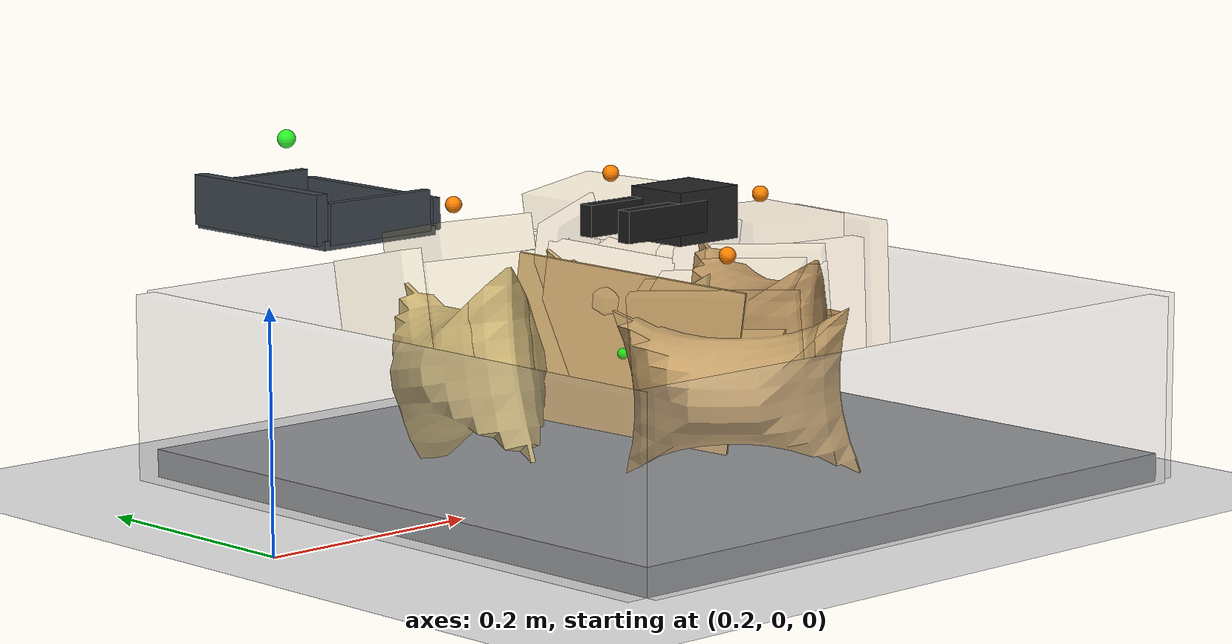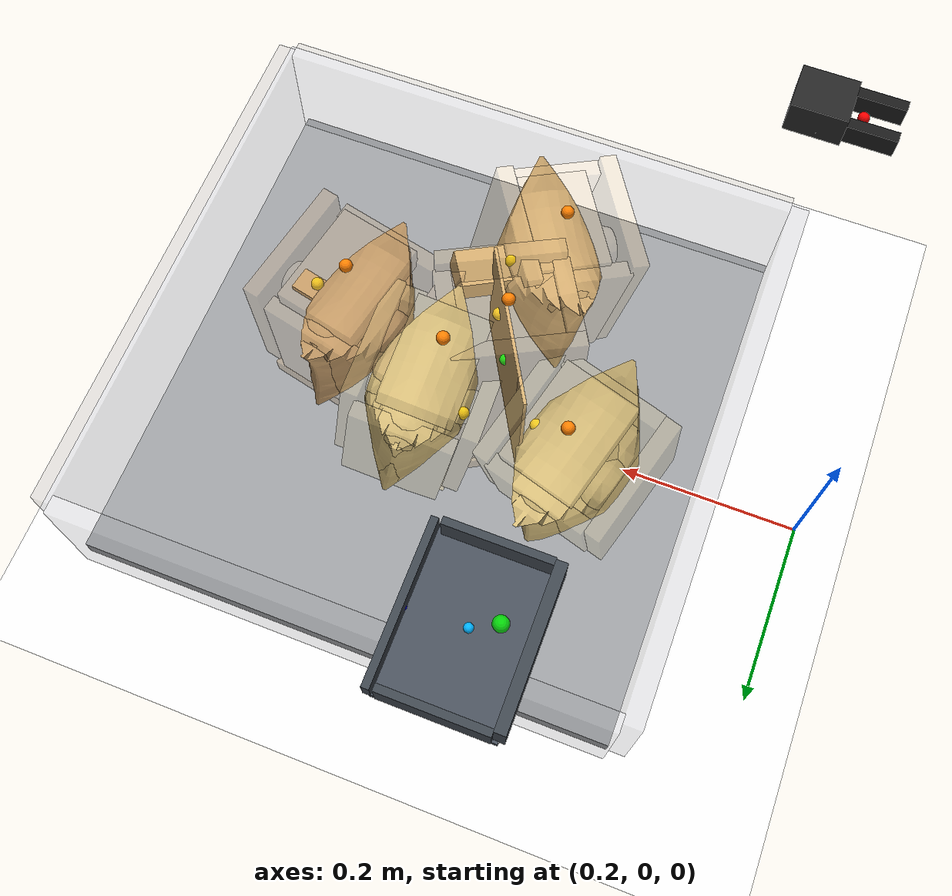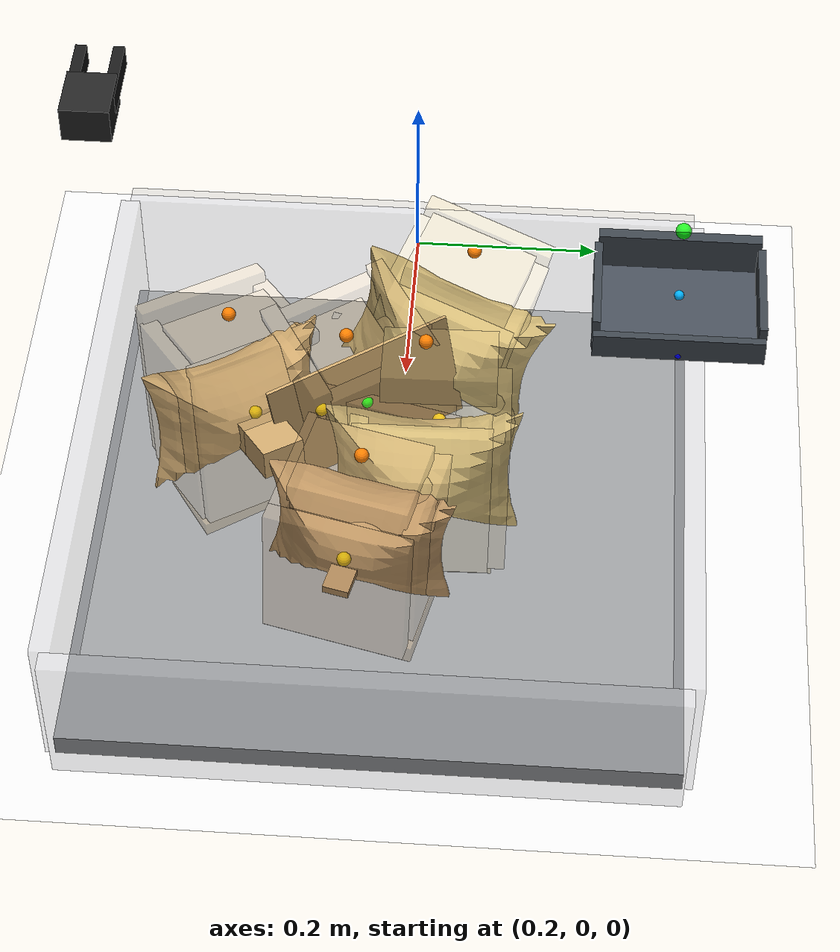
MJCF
<mujoco model="regular_well_filled_partially_buried_ep0_try0">
  <compiler angle="radian" coordinate="local" inertiafromgeom="true" meshdir="D:/Michael/2025/01.Research/01.Parceldetection/16.Pybullet/bullet3-master (1)/bullet3-master/examples/pybullet/examples/DeformableTest/Sackcodex2/object"/>
  <option timestep="0.002" gravity="0 0 -9.81" integrator="implicitfast" iterations="100" tolerance="1e-8"/>
  <size memory="768M" nconmax="12000"/>

  <visual>
    <global azimuth="128" elevation="-20"/>
    <headlight ambient="0.34 0.34 0.34" diffuse="0.78 0.78 0.78" specular="0.15 0.15 0.15"/>
    <rgba haze="0.11 0.13 0.18 1"/>
  </visual>

  <default>
    <geom condim="4" friction="1.15 0.03 0.01" margin="0.003" solimp="0.93 0.98 0.003" solref="0.012 1"/>
    <joint damping="1.2" armature="0.002"/>
    <position kp="2500" forcelimited="true" forcerange="-420 420"/>
    <motor ctrllimited="true"/>
  </default>

  <asset>
    <mesh name="sack_0_visual_mesh" file="sack8.obj" scale="0.0708 0.0708 0.0763"/>
    <mesh name="sack_1_visual_mesh" file="sack9.obj" scale="0.0680 0.0680 0.0705"/>
    <mesh name="sack_2_visual_mesh" file="sack2.obj" scale="0.0677 0.0677 0.0696"/>
    <mesh name="sack_3_visual_mesh" file="sack7.obj" scale="0.0747 0.0747 0.0829"/>
    <mesh name="sack_4_visual_mesh" file="sack10.obj" scale="0.0712 0.0712 0.0736"/>
  </asset>

  <worldbody>
    <light name="key" pos="0.85 0.15 1.8" dir="-0.2 -0.1 -1" directional="true"/>
    <geom name="floor" type="plane" size="2 2 0.1" rgba="0.93 0.93 0.93 1"/>
    <geom name="work_pad" type="box" pos="0.62 0 0.012" size="0.30 0.30 0.012" rgba="0.60 0.61 0.62 1" friction="1.4 0.05 0.01"/>
    <geom name="corral_front" type="box" pos="0.93 0.00 0.08" size="0.010 0.30 0.08" rgba="0.55 0.55 0.58 0.22" friction="1.0 0.03 0.01"/>
    <geom name="corral_back" type="box" pos="0.31 0.00 0.08" size="0.010 0.30 0.08" rgba="0.55 0.55 0.58 0.18" friction="1.0 0.03 0.01"/>
    <geom name="corral_left" type="box" pos="0.62 0.30 0.08" size="0.30 0.010 0.08" rgba="0.55 0.55 0.58 0.14" friction="1.0 0.03 0.01"/>
    <geom name="corral_right" type="box" pos="0.62 -0.30 0.08" size="0.30 0.010 0.08" rgba="0.55 0.55 0.58 0.14" friction="1.0 0.03 0.01"/>
    <camera name="overview" pos="1.22 0.00 0.92" xyaxes="0 1 0 -0.46 0 0.88"/>

    <body name="gripper_mocap" mocap="true" pos="0.36 -0.33 0.30" quat="0.707107 0 -0.707107 0"/>
    <body name="scoop_mocap" mocap="true" pos="0.42 0.28 0.20" quat="1 0 0 0"/>

    <body name="gripper_ctrl_base" pos="0.36 -0.33 0.30">
      <inertial pos="0 0 0" mass="0.001" diaginertia="1e-6 1e-6 1e-6"/>
      <joint name="gripper_ctrl_x" type="slide" axis="1 0 0" limited="true" range="0.20 1.00"/>
      <body name="gripper_ctrl_y_body">
        <inertial pos="0 0 0" mass="0.001" diaginertia="1e-6 1e-6 1e-6"/>
        <joint name="gripper_ctrl_y" type="slide" axis="0 1 0" limited="true" range="-0.60 0.60"/>
        <body name="gripper_ctrl_z_body">
          <inertial pos="0 0 0" mass="0.001" diaginertia="1e-6 1e-6 1e-6"/>
          <joint name="gripper_ctrl_z" type="slide" axis="0 0 1" limited="true" range="0.04 0.70"/>
          <body name="gripper_ctrl_yaw_body">
            <inertial pos="0 0 0" mass="0.001" diaginertia="1e-6 1e-6 1e-6"/>
            <joint name="gripper_ctrl_yaw" type="hinge" axis="0 0 1" limited="true" range="-3.1416 3.1416"/>
            <body name="gripper_ctrl_pitch_body">
              <inertial pos="0 0 0" mass="0.001" diaginertia="1e-6 1e-6 1e-6"/>
              <joint name="gripper_ctrl_pitch" type="hinge" axis="0 1 0" limited="true" range="-3.1416 3.1416"/>
              <body name="gripper_ctrl_roll_body">
                <inertial pos="0 0 0" mass="0.001" diaginertia="1e-6 1e-6 1e-6"/>
                <joint name="gripper_ctrl_roll" type="hinge" axis="1 0 0" limited="true" range="-3.1416 3.1416"/>
              </body>
            </body>
          </body>
        </body>
      </body>
    </body>

    <body name="scoop_ctrl_base" pos="0.42 0.28 0.20">
      <inertial pos="0 0 0" mass="0.001" diaginertia="1e-6 1e-6 1e-6"/>
      <joint name="scoop_ctrl_x" type="slide" axis="1 0 0" limited="true" range="0.20 1.00"/>
      <body name="scoop_ctrl_y_body">
        <inertial pos="0 0 0" mass="0.001" diaginertia="1e-6 1e-6 1e-6"/>
        <joint name="scoop_ctrl_y" type="slide" axis="0 1 0" limited="true" range="-0.60 0.60"/>
        <body name="scoop_ctrl_z_body">
          <inertial pos="0 0 0" mass="0.001" diaginertia="1e-6 1e-6 1e-6"/>
          <joint name="scoop_ctrl_z" type="slide" axis="0 0 1" limited="true" range="0.04 0.70"/>
          <body name="scoop_ctrl_yaw_body">
            <inertial pos="0 0 0" mass="0.001" diaginertia="1e-6 1e-6 1e-6"/>
            <joint name="scoop_ctrl_yaw" type="hinge" axis="0 0 1" limited="true" range="-3.1416 3.1416"/>
            <body name="scoop_ctrl_pitch_body">
              <inertial pos="0 0 0" mass="0.001" diaginertia="1e-6 1e-6 1e-6"/>
              <joint name="scoop_ctrl_pitch" type="hinge" axis="0 1 0" limited="true" range="-3.1416 3.1416"/>
              <body name="scoop_ctrl_roll_body">
                <inertial pos="0 0 0" mass="0.001" diaginertia="1e-6 1e-6 1e-6"/>
                <joint name="scoop_ctrl_roll" type="hinge" axis="1 0 0" limited="true" range="-3.1416 3.1416"/>
              </body>
            </body>
          </body>
        </body>
      </body>
    </body>

    <body name="gripper_tool" pos="0.36 -0.33 0.30" quat="0.707107 0 -0.707107 0">
      <freejoint name="gripper_tool_free"/>
      <inertial pos="0 0 0.04" mass="0.08" diaginertia="0.0002 0.0002 0.0002"/>
      <geom name="gripper_palm" type="box" pos="0 0 0.030" size="0.020 0.026 0.030" rgba="0.14 0.14 0.14 1"/>
      <body name="left_finger_body" pos="0 0 0.072">
        <joint name="left_finger_slide" type="slide" axis="0 1 0" limited="true" range="0.010 0.040" damping="12"/>
        <geom name="left_finger_geom" type="box" pos="0 0.020 0" size="0.012 0.006 0.040" rgba="0.10 0.10 0.10 1" friction="2.2 0.05 0.01"/>
      </body>
      <body name="right_finger_body" pos="0 0 0.072">
        <joint name="right_finger_slide" type="slide" axis="0 -1 0" limited="true" range="0.010 0.040" damping="12"/>
        <geom name="right_finger_geom" type="box" pos="0 -0.020 0" size="0.012 0.006 0.040" rgba="0.10 0.10 0.10 1" friction="2.2 0.05 0.01"/>
      </body>
      <site name="gripper_pinch_site" pos="0 0 0.074" size="0.006" rgba="1 0 0 1"/>
    </body>

    <body name="scoop_tool" pos="0.42 0.28 0.20" quat="1 0 0 0">
      <freejoint name="scoop_tool_free"/>
      <inertial pos="0 0 0.02" mass="0.10" diaginertia="0.0003 0.0003 0.0003"/>
      <geom name="scoop_plate" type="box" pos="0.062 0 0" size="0.062 0.085 0.004" rgba="0.28 0.31 0.35 1" friction="1.7 0.05 0.01"/>
      <geom name="scoop_lip" type="box" pos="0.126 0 0.014" size="0.004 0.085 0.014" rgba="0.24 0.27 0.30 1" friction="1.7 0.05 0.01"/>
      <geom name="scoop_left_rail" type="box" pos="0.062 0.082 0.018" size="0.056 0.004 0.018" rgba="0.24 0.27 0.30 1"/>
      <geom name="scoop_right_rail" type="box" pos="0.062 -0.082 0.018" size="0.056 0.004 0.018" rgba="0.24 0.27 0.30 1"/>
      <geom name="scoop_backstop" type="box" pos="0.000 0 0.022" size="0.006 0.082 0.022" rgba="0.24 0.27 0.30 1"/>
      <site name="scoop_tip_site" pos="0.126 0 0.005" size="0.005" rgba="0 0 1 1"/>
      <site name="scoop_center_site" pos="0.060 0 0.020" size="0.005" rgba="0 0.7 1 1"/>
      <site name="score_overlay_site" pos="0.030 0 0.080" size="0.008" rgba="0 1 0 0.8"/>
    </body>

    <body name="sack_0" pos="0.6282 0.0336 0.1111" euler="-0.0056 -0.1449 1.5925">
      <freejoint name="sack_0_free"/>

      <geom name="sack_0_visual" type="mesh" mesh="sack_0_visual_mesh" rgba="0.840 0.740 0.480 0.92" contype="0" conaffinity="0"/>
      <site name="sack_0_center_site" pos="0 0 0.000" size="0.006" rgba="0 1 0 1"/>
      <site name="sack_0_top_site" pos="0 0.0060 0.1525" size="0.007" rgba="1 0.5 0 1"/>
      <site name="sack_0_side_site" pos="0.0140 0.0497 0.018" size="0.007" rgba="1 0.8 0 1"/>

      <geom name="sack_0_core_geom" type="ellipsoid" pos="0 0 0.0060" size="0.0504 0.0422 0.0895" mass="1.0165" rgba="0.840 0.740 0.480 0.12" friction="1.0 0.03 0.01"/>
      <geom name="sack_0_core_front" type="capsule" fromto="-0.0060 0 -0.0200 0.0590 0 0.0600" size="0.0312" mass="0.2420" rgba="0.840 0.740 0.480 0.10"/>
      <geom name="sack_0_core_left" type="capsule" fromto="-0.008 0.0261 -0.010 0.018 0.0441 0.060" size="0.0241" mass="0.4357" rgba="0.840 0.740 0.480 0.10"/>
      <geom name="sack_0_core_right" type="capsule" fromto="-0.006 -0.0261 -0.008 0.020 -0.0461 0.054" size="0.0221" mass="0.4357" rgba="0.840 0.740 0.480 0.10"/>

      <body name="sack_0_bottom_support_proxy_body" pos="0 0.0045 -0.0881">
        <joint name="sack_0_bottom_x" type="slide" axis="1 0 0" limited="true" range="-0.012 0.012" damping="18" stiffness="497.2"/>
        <joint name="sack_0_bottom_y" type="slide" axis="0 1 0" limited="true" range="-0.012 0.012" damping="18" stiffness="497.2"/>
        <joint name="sack_0_bottom_z" type="slide" axis="0 0 1" limited="true" range="-0.008 0.020" damping="24" stiffness="612.1"/>
        <geom name="sack_0_bottom_support_proxy" type="box" size="0.0721 0.0557 0.0100" mass="0.1936" rgba="0.840 0.740 0.480 0.34" friction="1.55 0.05 0.01"/>
      </body>

      <body name="sack_0_top_grasp_proxy_body" pos="0.0140 0.0060 0.1225">
        <joint name="sack_0_top_x" type="slide" axis="1 0 0" limited="true" range="-0.018 0.018" damping="12" stiffness="191.1"/>
        <joint name="sack_0_top_y" type="slide" axis="0 1 0" limited="true" range="-0.018 0.018" damping="12" stiffness="191.1"/>
        <joint name="sack_0_top_z" type="slide" axis="0 0 1" limited="true" range="-0.040 0.010" damping="14" stiffness="142.4"/>
        <geom name="sack_0_top_grasp_proxy" type="box" size="0.0561 0.0397 0.0150" mass="0.1452" rgba="0.840 0.740 0.480 0.26" friction="2.2 0.05 0.01"/>
      </body>

      <body name="sack_0_left_side_proxy_body" pos="0 0.0658 0.010">
        <joint name="sack_0_left_side_slide" type="slide" axis="0 -1 0" limited="true" range="-0.028 0.016" damping="16" stiffness="254.7"/>
        <geom name="sack_0_left_side_proxy" type="box" size="0.0681 0.0090 0.0861" mass="0.1452" rgba="0.840 0.740 0.480 0.24"/>
      </body>

      <body name="sack_0_right_side_proxy_body" pos="0 -0.0618 0.010">
        <joint name="sack_0_right_side_slide" type="slide" axis="0 1 0" limited="true" range="-0.028 0.016" damping="16" stiffness="236.0"/>
        <geom name="sack_0_right_side_proxy" type="box" size="0.0681 0.0090 0.0861" mass="0.1452" rgba="0.840 0.740 0.480 0.24"/>
      </body>

      <body name="sack_0_front_proxy_body" pos="0.0761 0 0.000">
        <joint name="sack_0_front_slide" type="slide" axis="-1 0 0" limited="true" range="-0.022 0.012" damping="15" stiffness="238.6"/>
        <geom name="sack_0_front_support_proxy" type="box" size="0.0090 0.0557 0.0841" mass="0.1210" rgba="0.840 0.740 0.480 0.22"/>
      </body>

      <body name="sack_0_back_proxy_body" pos="-0.0621 0 0.000">
        <joint name="sack_0_back_slide" type="slide" axis="1 0 0" limited="true" range="-0.022 0.012" damping="15" stiffness="219.9"/>
        <geom name="sack_0_back_support_proxy" type="box" size="0.0090 0.0557 0.0841" mass="0.1210" rgba="0.840 0.740 0.480 0.22"/>
      </body>

      <body name="sack_0_shape_proxy_body" pos="0.0084 0.0181 0.0276">
        <joint name="sack_0_bulge_y" type="slide" axis="0 1 0" limited="true" range="-0.020 0.020" damping="8" stiffness="75.2"/>
        <joint name="sack_0_bulge_z" type="slide" axis="0 0 1" limited="true" range="-0.014 0.028" damping="8" stiffness="81.4"/>
        <geom name="sack_0_shape_proxy" type="ellipsoid" size="0.0201 0.0161 0.0260" mass="0.0968" rgba="0.840 0.740 0.480 0.28"/>
      </body>
    </body>

    <body name="sack_1" pos="0.7220 -0.0207 0.1217" euler="-0.0371 -0.0072 1.3527">
      <freejoint name="sack_1_free"/>

      <geom name="sack_1_visual" type="mesh" mesh="sack_1_visual_mesh" rgba="0.760 0.600 0.400 0.92" contype="0" conaffinity="0"/>
      <site name="sack_1_center_site" pos="0 0 0.000" size="0.006" rgba="0 1 0 1"/>
      <site name="sack_1_top_site" pos="0 -0.0060 0.1141" size="0.007" rgba="1 0.5 0 1"/>
      <site name="sack_1_side_site" pos="0.0000 -0.0556 0.018" size="0.007" rgba="1 0.8 0 1"/>

      <geom name="sack_1_core_geom" type="ellipsoid" pos="0 0 0.0058" size="0.0443 0.0344 0.0775" mass="1.0388" rgba="0.760 0.600 0.400 0.12" friction="1.0 0.03 0.01"/>
      <geom name="sack_1_core_front" type="capsule" fromto="-0.0200 0 -0.0200 0.0450 0 0.0600" size="0.0299" mass="0.2473" rgba="0.760 0.600 0.400 0.10"/>
      <geom name="sack_1_core_left" type="capsule" fromto="-0.008 0.0374 -0.010 0.018 0.0554 0.060" size="0.0242" mass="0.4452" rgba="0.760 0.600 0.400 0.10"/>
      <geom name="sack_1_core_right" type="capsule" fromto="-0.006 -0.0374 -0.008 0.020 -0.0574 0.054" size="0.0222" mass="0.4452" rgba="0.760 0.600 0.400 0.10"/>

      <body name="sack_1_bottom_support_proxy_body" pos="0 -0.0105 -0.0827">
        <joint name="sack_1_bottom_x" type="slide" axis="1 0 0" limited="true" range="-0.012 0.012" damping="18" stiffness="457.7"/>
        <joint name="sack_1_bottom_y" type="slide" axis="0 1 0" limited="true" range="-0.012 0.012" damping="18" stiffness="457.7"/>
        <joint name="sack_1_bottom_z" type="slide" axis="0 0 1" limited="true" range="-0.008 0.020" damping="24" stiffness="563.8"/>
        <geom name="sack_1_bottom_support_proxy" type="box" size="0.0749 0.0616 0.0100" mass="0.1979" rgba="0.760 0.600 0.400 0.34" friction="1.55 0.05 0.01"/>
      </body>

      <body name="sack_1_top_grasp_proxy_body" pos="0.0000 -0.0060 0.0841">
        <joint name="sack_1_top_x" type="slide" axis="1 0 0" limited="true" range="-0.018 0.018" damping="12" stiffness="175.8"/>
        <joint name="sack_1_top_y" type="slide" axis="0 1 0" limited="true" range="-0.018 0.018" damping="12" stiffness="175.8"/>
        <joint name="sack_1_top_z" type="slide" axis="0 0 1" limited="true" range="-0.040 0.010" damping="14" stiffness="129.2"/>
        <geom name="sack_1_top_grasp_proxy" type="box" size="0.0589 0.0456 0.0150" mass="0.1484" rgba="0.760 0.600 0.400 0.26" friction="2.2 0.05 0.01"/>
      </body>

      <body name="sack_1_left_side_proxy_body" pos="0 0.0830 0.010">
        <joint name="sack_1_left_side_slide" type="slide" axis="0 -1 0" limited="true" range="-0.028 0.016" damping="16" stiffness="227.8"/>
        <geom name="sack_1_left_side_proxy" type="box" size="0.0709 0.0090 0.0807" mass="0.1484" rgba="0.760 0.600 0.400 0.24"/>
      </body>

      <body name="sack_1_right_side_proxy_body" pos="0 -0.0790 0.010">
        <joint name="sack_1_right_side_slide" type="slide" axis="0 1 0" limited="true" range="-0.028 0.016" damping="16" stiffness="211.2"/>
        <geom name="sack_1_right_side_proxy" type="box" size="0.0709 0.0090 0.0807" mass="0.1484" rgba="0.760 0.600 0.400 0.24"/>
      </body>

      <body name="sack_1_front_proxy_body" pos="0.0649 0 0.000">
        <joint name="sack_1_front_slide" type="slide" axis="-1 0 0" limited="true" range="-0.022 0.012" damping="15" stiffness="218.8"/>
        <geom name="sack_1_front_support_proxy" type="box" size="0.0090 0.0616 0.0787" mass="0.1237" rgba="0.760 0.600 0.400 0.22"/>
      </body>

      <body name="sack_1_back_proxy_body" pos="-0.0649 0 0.000">
        <joint name="sack_1_back_slide" type="slide" axis="1 0 0" limited="true" range="-0.022 0.012" damping="15" stiffness="202.3"/>
        <geom name="sack_1_back_support_proxy" type="box" size="0.0090 0.0616 0.0787" mass="0.1237" rgba="0.760 0.600 0.400 0.22"/>
      </body>

      <body name="sack_1_shape_proxy_body" pos="0.0000 -0.0294 0.0408">
        <joint name="sack_1_bulge_y" type="slide" axis="0 1 0" limited="true" range="-0.020 0.020" damping="8" stiffness="101.6"/>
        <joint name="sack_1_bulge_z" type="slide" axis="0 0 1" limited="true" range="-0.014 0.028" damping="8" stiffness="101.2"/>
        <geom name="sack_1_shape_proxy" type="ellipsoid" size="0.0202 0.0163 0.0262" mass="0.0989" rgba="0.760 0.600 0.400 0.28"/>
      </body>
    </body>

    <body name="sack_2" pos="0.5563 -0.0278 0.1215" euler="0.1320 0.0246 -2.6404">
      <freejoint name="sack_2_free"/>

      <geom name="sack_2_visual" type="mesh" mesh="sack_2_visual_mesh" rgba="0.820 0.670 0.440 0.92" contype="0" conaffinity="0"/>
      <site name="sack_2_center_site" pos="0 0 0.000" size="0.006" rgba="0 1 0 1"/>
      <site name="sack_2_top_site" pos="0 0.0060 0.1037" size="0.007" rgba="1 0.5 0 1"/>
      <site name="sack_2_side_site" pos="0.0000 0.0477 0.018" size="0.007" rgba="1 0.8 0 1"/>

      <geom name="sack_2_core_geom" type="ellipsoid" pos="0 0 0.0057" size="0.0451 0.0350 0.0669" mass="0.6594" rgba="0.820 0.670 0.440 0.12" friction="1.0 0.03 0.01"/>
      <geom name="sack_2_core_front" type="capsule" fromto="-0.0200 0 -0.0200 0.0450 0 0.0600" size="0.0296" mass="0.1570" rgba="0.820 0.670 0.440 0.10"/>
      <geom name="sack_2_core_left" type="capsule" fromto="-0.008 0.0226 -0.010 0.018 0.0406 0.060" size="0.0240" mass="0.2826" rgba="0.820 0.670 0.440 0.10"/>
      <geom name="sack_2_core_right" type="capsule" fromto="-0.006 -0.0226 -0.008 0.020 -0.0426 0.054" size="0.0220" mass="0.2826" rgba="0.820 0.670 0.440 0.10"/>

      <body name="sack_2_bottom_support_proxy_body" pos="0 -0.0146 -0.1050">
        <joint name="sack_2_bottom_x" type="slide" axis="1 0 0" limited="true" range="-0.012 0.012" damping="18" stiffness="447.3"/>
        <joint name="sack_2_bottom_y" type="slide" axis="0 1 0" limited="true" range="-0.012 0.012" damping="18" stiffness="447.3"/>
        <joint name="sack_2_bottom_z" type="slide" axis="0 0 1" limited="true" range="-0.008 0.020" damping="24" stiffness="551.2"/>
        <geom name="sack_2_bottom_support_proxy" type="box" size="0.0726 0.0537 0.0100" mass="0.1256" rgba="0.820 0.670 0.440 0.34" friction="1.55 0.05 0.01"/>
      </body>

      <body name="sack_2_top_grasp_proxy_body" pos="0.0000 0.0060 0.0737">
        <joint name="sack_2_top_x" type="slide" axis="1 0 0" limited="true" range="-0.018 0.018" damping="12" stiffness="171.7"/>
        <joint name="sack_2_top_y" type="slide" axis="0 1 0" limited="true" range="-0.018 0.018" damping="12" stiffness="171.7"/>
        <joint name="sack_2_top_z" type="slide" axis="0 0 1" limited="true" range="-0.040 0.010" damping="14" stiffness="125.8"/>
        <geom name="sack_2_top_grasp_proxy" type="box" size="0.0566 0.0377 0.0150" mass="0.0942" rgba="0.820 0.670 0.440 0.26" friction="2.2 0.05 0.01"/>
      </body>

      <body name="sack_2_left_side_proxy_body" pos="0 0.0603 0.010">
        <joint name="sack_2_left_side_slide" type="slide" axis="0 -1 0" limited="true" range="-0.028 0.016" damping="16" stiffness="220.5"/>
        <geom name="sack_2_left_side_proxy" type="box" size="0.0686 0.0090 0.1030" mass="0.0942" rgba="0.820 0.670 0.440 0.24"/>
      </body>

      <body name="sack_2_right_side_proxy_body" pos="0 -0.0563 0.010">
        <joint name="sack_2_right_side_slide" type="slide" axis="0 1 0" limited="true" range="-0.028 0.016" damping="16" stiffness="204.5"/>
        <geom name="sack_2_right_side_proxy" type="box" size="0.0686 0.0090 0.1030" mass="0.0942" rgba="0.820 0.670 0.440 0.24"/>
      </body>

      <body name="sack_2_front_proxy_body" pos="0.0626 0 0.000">
        <joint name="sack_2_front_slide" type="slide" axis="-1 0 0" limited="true" range="-0.022 0.012" damping="15" stiffness="213.7"/>
        <geom name="sack_2_front_support_proxy" type="box" size="0.0090 0.0537 0.1010" mass="0.0785" rgba="0.820 0.670 0.440 0.22"/>
      </body>

      <body name="sack_2_back_proxy_body" pos="-0.0626 0 0.000">
        <joint name="sack_2_back_slide" type="slide" axis="1 0 0" limited="true" range="-0.022 0.012" damping="15" stiffness="197.7"/>
        <geom name="sack_2_back_support_proxy" type="box" size="0.0090 0.0537 0.1010" mass="0.0785" rgba="0.820 0.670 0.440 0.22"/>
      </body>

      <body name="sack_2_shape_proxy_body" pos="0.0000 0.0146 0.0442">
        <joint name="sack_2_bulge_y" type="slide" axis="0 1 0" limited="true" range="-0.020 0.020" damping="8" stiffness="108.4"/>
        <joint name="sack_2_bulge_z" type="slide" axis="0 0 1" limited="true" range="-0.014 0.028" damping="8" stiffness="106.3"/>
        <geom name="sack_2_shape_proxy" type="ellipsoid" size="0.0200 0.0161 0.0263" mass="0.0628" rgba="0.820 0.670 0.440 0.28"/>
      </body>
    </body>

    <body name="sack_3" pos="0.4473 0.0459 0.1106" euler="-0.2149 0.0345 1.2920">
      <freejoint name="sack_3_free"/>

      <geom name="sack_3_visual" type="mesh" mesh="sack_3_visual_mesh" rgba="0.840 0.740 0.480 0.92" contype="0" conaffinity="0"/>
      <site name="sack_3_center_site" pos="0 0 0.000" size="0.006" rgba="0 1 0 1"/>
      <site name="sack_3_top_site" pos="0 -0.0060 0.1379" size="0.007" rgba="1 0.5 0 1"/>
      <site name="sack_3_side_site" pos="0.0000 -0.0523 0.018" size="0.007" rgba="1 0.8 0 1"/>

      <geom name="sack_3_core_geom" type="ellipsoid" pos="0 0 0.0059" size="0.0513 0.0436 0.0919" mass="0.9781" rgba="0.840 0.740 0.480 0.12" friction="1.0 0.03 0.01"/>
      <geom name="sack_3_core_front" type="capsule" fromto="-0.0200 0 -0.0200 0.0450 0 0.0600" size="0.0323" mass="0.2329" rgba="0.840 0.740 0.480 0.10"/>
      <geom name="sack_3_core_left" type="capsule" fromto="-0.008 0.0264 -0.010 0.018 0.0444 0.060" size="0.0241" mass="0.4192" rgba="0.840 0.740 0.480 0.10"/>
      <geom name="sack_3_core_right" type="capsule" fromto="-0.006 -0.0264 -0.008 0.020 -0.0464 0.054" size="0.0221" mass="0.4192" rgba="0.840 0.740 0.480 0.10"/>

      <body name="sack_3_bottom_support_proxy_body" pos="0 0.0148 -0.0960">
        <joint name="sack_3_bottom_x" type="slide" axis="1 0 0" limited="true" range="-0.012 0.012" damping="18" stiffness="529.2"/>
        <joint name="sack_3_bottom_y" type="slide" axis="0 1 0" limited="true" range="-0.012 0.012" damping="18" stiffness="529.2"/>
        <joint name="sack_3_bottom_z" type="slide" axis="0 0 1" limited="true" range="-0.008 0.020" damping="24" stiffness="651.3"/>
        <geom name="sack_3_bottom_support_proxy" type="box" size="0.0731 0.0583 0.0100" mass="0.1863" rgba="0.840 0.740 0.480 0.34" friction="1.55 0.05 0.01"/>
      </body>

      <body name="sack_3_top_grasp_proxy_body" pos="0.0000 -0.0060 0.1079">
        <joint name="sack_3_top_x" type="slide" axis="1 0 0" limited="true" range="-0.018 0.018" damping="12" stiffness="203.6"/>
        <joint name="sack_3_top_y" type="slide" axis="0 1 0" limited="true" range="-0.018 0.018" damping="12" stiffness="203.6"/>
        <joint name="sack_3_top_z" type="slide" axis="0 0 1" limited="true" range="-0.040 0.010" damping="14" stiffness="153.1"/>
        <geom name="sack_3_top_grasp_proxy" type="box" size="0.0571 0.0423 0.0150" mass="0.1397" rgba="0.840 0.740 0.480 0.26" friction="2.2 0.05 0.01"/>
      </body>

      <body name="sack_3_left_side_proxy_body" pos="0 0.0687 0.010">
        <joint name="sack_3_left_side_slide" type="slide" axis="0 -1 0" limited="true" range="-0.028 0.016" damping="16" stiffness="275.9"/>
        <geom name="sack_3_left_side_proxy" type="box" size="0.0691 0.0090 0.0940" mass="0.1397" rgba="0.840 0.740 0.480 0.24"/>
      </body>

      <body name="sack_3_right_side_proxy_body" pos="0 -0.0647 0.010">
        <joint name="sack_3_right_side_slide" type="slide" axis="0 1 0" limited="true" range="-0.028 0.016" damping="16" stiffness="255.4"/>
        <geom name="sack_3_right_side_proxy" type="box" size="0.0691 0.0090 0.0940" mass="0.1397" rgba="0.840 0.740 0.480 0.24"/>
      </body>

      <body name="sack_3_front_proxy_body" pos="0.0631 0 0.000">
        <joint name="sack_3_front_slide" type="slide" axis="-1 0 0" limited="true" range="-0.022 0.012" damping="15" stiffness="254.6"/>
        <geom name="sack_3_front_support_proxy" type="box" size="0.0090 0.0583 0.0920" mass="0.1164" rgba="0.840 0.740 0.480 0.22"/>
      </body>

      <body name="sack_3_back_proxy_body" pos="-0.0631 0 0.000">
        <joint name="sack_3_back_slide" type="slide" axis="1 0 0" limited="true" range="-0.022 0.012" damping="15" stiffness="234.1"/>
        <geom name="sack_3_back_support_proxy" type="box" size="0.0090 0.0583 0.0920" mass="0.1164" rgba="0.840 0.740 0.480 0.22"/>
      </body>

      <body name="sack_3_shape_proxy_body" pos="0.0000 -0.0184 0.0169">
        <joint name="sack_3_bulge_y" type="slide" axis="0 1 0" limited="true" range="-0.020 0.020" damping="8" stiffness="60.0"/>
        <joint name="sack_3_bulge_z" type="slide" axis="0 0 1" limited="true" range="-0.014 0.028" damping="8" stiffness="70.0"/>
        <geom name="sack_3_shape_proxy" type="ellipsoid" size="0.0201 0.0161 0.0261" mass="0.0932" rgba="0.840 0.740 0.480 0.28"/>
      </body>
    </body>

    <body name="sack_4" pos="0.5529 -0.1634 0.1084" euler="0.0491 -0.1588 2.1634">
      <freejoint name="sack_4_free"/>

      <geom name="sack_4_visual" type="mesh" mesh="sack_4_visual_mesh" rgba="0.820 0.670 0.440 0.92" contype="0" conaffinity="0"/>
      <site name="sack_4_center_site" pos="0 0 0.000" size="0.006" rgba="0 1 0 1"/>
      <site name="sack_4_top_site" pos="0 -0.0060 0.1145" size="0.007" rgba="1 0.5 0 1"/>
      <site name="sack_4_side_site" pos="0.0000 -0.0483 0.018" size="0.007" rgba="1 0.8 0 1"/>

      <geom name="sack_4_core_geom" type="ellipsoid" pos="0 0 0.0058" size="0.0452 0.0352 0.0672" mass="0.6583" rgba="0.820 0.670 0.440 0.12" friction="1.0 0.03 0.01"/>
      <geom name="sack_4_core_front" type="capsule" fromto="-0.0200 0 -0.0200 0.0450 0 0.0600" size="0.0298" mass="0.1567" rgba="0.820 0.670 0.440 0.10"/>
      <geom name="sack_4_core_left" type="capsule" fromto="-0.008 0.0224 -0.010 0.018 0.0404 0.060" size="0.0240" mass="0.2821" rgba="0.820 0.670 0.440 0.10"/>
      <geom name="sack_4_core_right" type="capsule" fromto="-0.006 -0.0224 -0.008 0.020 -0.0424 0.054" size="0.0220" mass="0.2821" rgba="0.820 0.670 0.440 0.10"/>

      <body name="sack_4_bottom_support_proxy_body" pos="0 -0.0099 -0.0966">
        <joint name="sack_4_bottom_x" type="slide" axis="1 0 0" limited="true" range="-0.012 0.012" damping="18" stiffness="454.1"/>
        <joint name="sack_4_bottom_y" type="slide" axis="0 1 0" limited="true" range="-0.012 0.012" damping="18" stiffness="454.1"/>
        <joint name="sack_4_bottom_z" type="slide" axis="0 0 1" limited="true" range="-0.008 0.020" damping="24" stiffness="559.5"/>
        <geom name="sack_4_bottom_support_proxy" type="box" size="0.0728 0.0543 0.0100" mass="0.1254" rgba="0.820 0.670 0.440 0.34" friction="1.55 0.05 0.01"/>
      </body>

      <body name="sack_4_top_grasp_proxy_body" pos="0.0000 -0.0060 0.0845">
        <joint name="sack_4_top_x" type="slide" axis="1 0 0" limited="true" range="-0.018 0.018" damping="12" stiffness="174.4"/>
        <joint name="sack_4_top_y" type="slide" axis="0 1 0" limited="true" range="-0.018 0.018" damping="12" stiffness="174.4"/>
        <joint name="sack_4_top_z" type="slide" axis="0 0 1" limited="true" range="-0.040 0.010" damping="14" stiffness="128.0"/>
        <geom name="sack_4_top_grasp_proxy" type="box" size="0.0568 0.0383 0.0150" mass="0.0940" rgba="0.820 0.670 0.440 0.26" friction="2.2 0.05 0.01"/>
      </body>

      <body name="sack_4_left_side_proxy_body" pos="0 0.0606 0.010">
        <joint name="sack_4_left_side_slide" type="slide" axis="0 -1 0" limited="true" range="-0.028 0.016" damping="16" stiffness="225.3"/>
        <geom name="sack_4_left_side_proxy" type="box" size="0.0688 0.0090 0.0946" mass="0.0940" rgba="0.820 0.670 0.440 0.24"/>
      </body>

      <body name="sack_4_right_side_proxy_body" pos="0 -0.0566 0.010">
        <joint name="sack_4_right_side_slide" type="slide" axis="0 1 0" limited="true" range="-0.028 0.016" damping="16" stiffness="209.0"/>
        <geom name="sack_4_right_side_proxy" type="box" size="0.0688 0.0090 0.0946" mass="0.0940" rgba="0.820 0.670 0.440 0.24"/>
      </body>

      <body name="sack_4_front_proxy_body" pos="0.0628 0 0.000">
        <joint name="sack_4_front_slide" type="slide" axis="-1 0 0" limited="true" range="-0.022 0.012" damping="15" stiffness="217.1"/>
        <geom name="sack_4_front_support_proxy" type="box" size="0.0090 0.0543 0.0926" mass="0.0784" rgba="0.820 0.670 0.440 0.22"/>
      </body>

      <body name="sack_4_back_proxy_body" pos="-0.0628 0 0.000">
        <joint name="sack_4_back_slide" type="slide" axis="1 0 0" limited="true" range="-0.022 0.012" damping="15" stiffness="200.7"/>
        <geom name="sack_4_back_support_proxy" type="box" size="0.0090 0.0543 0.0926" mass="0.0784" rgba="0.820 0.670 0.440 0.22"/>
      </body>

      <body name="sack_4_shape_proxy_body" pos="0.0000 -0.0144 0.0420">
        <joint name="sack_4_bulge_y" type="slide" axis="0 1 0" limited="true" range="-0.020 0.020" damping="8" stiffness="103.9"/>
        <joint name="sack_4_bulge_z" type="slide" axis="0 0 1" limited="true" range="-0.014 0.028" damping="8" stiffness="102.9"/>
        <geom name="sack_4_shape_proxy" type="ellipsoid" size="0.0200 0.0160 0.0262" mass="0.0627" rgba="0.820 0.670 0.440 0.28"/>
      </body>
    </body>
  </worldbody>

  <equality>
    <weld name="gripper_follow" body1="gripper_mocap" body2="gripper_tool" torquescale="400" solref="0.002 1" solimp="0.99 0.999 0.0001"/>
    <weld name="scoop_follow" body1="scoop_mocap" body2="scoop_tool" torquescale="500" solref="0.002 1" solimp="0.99 0.999 0.0001"/>
  </equality>

  <actuator>
    <position name="gripper_ctrl_x_act" joint="gripper_ctrl_x" ctrlrange="0.20 1.00" kp="3500" forcerange="-300 300"/>
    <position name="gripper_ctrl_y_act" joint="gripper_ctrl_y" ctrlrange="-0.60 0.60" kp="3500" forcerange="-300 300"/>
    <position name="gripper_ctrl_z_act" joint="gripper_ctrl_z" ctrlrange="0.04 0.70" kp="3500" forcerange="-300 300"/>
    <position name="gripper_ctrl_yaw_act" joint="gripper_ctrl_yaw" ctrlrange="-3.1416 3.1416" kp="1800" forcerange="-250 250"/>
    <position name="gripper_ctrl_pitch_act" joint="gripper_ctrl_pitch" ctrlrange="-3.1416 3.1416" kp="1800" forcerange="-250 250"/>
    <position name="gripper_ctrl_roll_act" joint="gripper_ctrl_roll" ctrlrange="-3.1416 3.1416" kp="1800" forcerange="-250 250"/>
    <position name="scoop_ctrl_x_act" joint="scoop_ctrl_x" ctrlrange="0.20 1.00" kp="3500" forcerange="-300 300"/>
    <position name="scoop_ctrl_y_act" joint="scoop_ctrl_y" ctrlrange="-0.60 0.60" kp="3500" forcerange="-300 300"/>
    <position name="scoop_ctrl_z_act" joint="scoop_ctrl_z" ctrlrange="0.04 0.70" kp="3500" forcerange="-300 300"/>
    <position name="scoop_ctrl_yaw_act" joint="scoop_ctrl_yaw" ctrlrange="-3.1416 3.1416" kp="1800" forcerange="-250 250"/>
    <position name="scoop_ctrl_pitch_act" joint="scoop_ctrl_pitch" ctrlrange="-3.1416 3.1416" kp="1800" forcerange="-250 250"/>
    <position name="scoop_ctrl_roll_act" joint="scoop_ctrl_roll" ctrlrange="-3.1416 3.1416" kp="1800" forcerange="-250 250"/>
    <position name="left_finger_act" joint="left_finger_slide" ctrlrange="0.010 0.040" kp="2800" forcerange="-220 220"/>
    <position name="right_finger_act" joint="right_finger_slide" ctrlrange="0.010 0.040" kp="2800" forcerange="-220 220"/>
  </actuator>

  <contact>
    <exclude body1="sack_0_top_grasp_proxy_body" body2="sack_0_left_side_proxy_body"/>
    <exclude body1="sack_0_top_grasp_proxy_body" body2="sack_0_right_side_proxy_body"/>
    <exclude body1="sack_1_top_grasp_proxy_body" body2="sack_1_left_side_proxy_body"/>
    <exclude body1="sack_1_top_grasp_proxy_body" body2="sack_1_right_side_proxy_body"/>
    <exclude body1="sack_2_top_grasp_proxy_body" body2="sack_2_left_side_proxy_body"/>
    <exclude body1="sack_2_top_grasp_proxy_body" body2="sack_2_right_side_proxy_body"/>
    <exclude body1="sack_3_top_grasp_proxy_body" body2="sack_3_left_side_proxy_body"/>
    <exclude body1="sack_3_top_grasp_proxy_body" body2="sack_3_right_side_proxy_body"/>
    <exclude body1="sack_4_top_grasp_proxy_body" body2="sack_4_left_side_proxy_body"/>
    <exclude body1="sack_4_top_grasp_proxy_body" body2="sack_4_right_side_proxy_body"/>
  </contact>
</mujoco>
